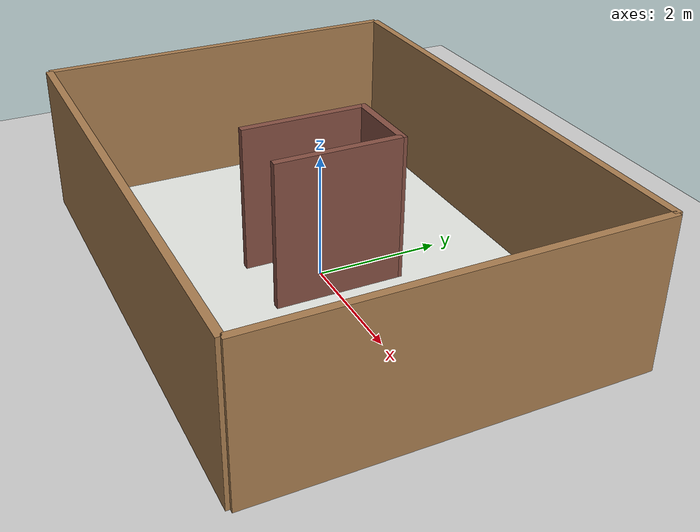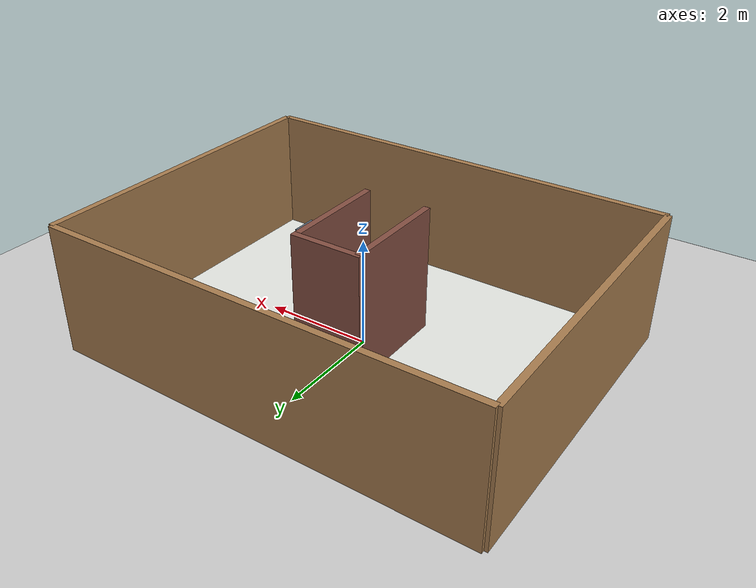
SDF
<?xml version="1.0" ?>
<sdf version="1.6">
  <world name="mapsimple_scan_world">
    <gravity>0 0 -9.8</gravity>
    <magnetic_field>6e-06 2.3e-05 -4.2e-05</magnetic_field>
    <atmosphere type="adiabatic"/>

    <include>
      <uri>model://sun</uri>
    </include>

    <include>
      <uri>model://ground_plane</uri>
    </include>

    <scene>
      <ambient>0.78 0.78 0.76 1</ambient>
      <background>0.93 0.95 0.98 1</background>
      <shadows>true</shadows>
    </scene>

    <physics name="default_physics" default="1" type="ode">
      <max_step_size>0.001</max_step_size>
      <real_time_update_rate>1000</real_time_update_rate>
    </physics>

    <gui fullscreen="0">
      <camera name="user_camera">
        <pose>0 0 14 0 1.57 1.57</pose>
        <view_controller>orbit</view_controller>
        <projection_type>perspective</projection_type>
      </camera>
    </gui>

    <model name="simple_scan_layout">
      <static>true</static>
      <pose>0 0 0 0 0 0</pose>

      <link name="floor">
        <pose>0 0 0.025 0 0 0</pose>
        <collision name="floor_collision">
          <geometry>
            <box>
              <size>8 6 0.05</size>
            </box>
          </geometry>
        </collision>
        <visual name="floor_visual">
          <geometry>
            <box>
              <size>8 6 0.05</size>
            </box>
          </geometry>
          <material>
            <ambient>0.85 0.86 0.84 1</ambient>
            <diffuse>0.90 0.91 0.89 1</diffuse>
          </material>
        </visual>
      </link>

      <link name="wall_south">
        <pose>0 -3 1.2 0 0 0</pose>
        <collision name="collision">
          <geometry>
            <box><size>8 0.12 2.4</size></box>
          </geometry>
        </collision>
        <visual name="visual">
          <geometry>
            <box><size>8 0.12 2.4</size></box>
          </geometry>
          <material>
            <ambient>0.56 0.40 0.24 1</ambient>
            <diffuse>0.66 0.49 0.31 1</diffuse>
          </material>
        </visual>
      </link>

      <link name="wall_north">
        <pose>0 3 1.2 0 0 0</pose>
        <collision name="collision">
          <geometry>
            <box><size>8 0.12 2.4</size></box>
          </geometry>
        </collision>
        <visual name="visual">
          <geometry>
            <box><size>8 0.12 2.4</size></box>
          </geometry>
          <material>
            <ambient>0.56 0.40 0.24 1</ambient>
            <diffuse>0.66 0.49 0.31 1</diffuse>
          </material>
        </visual>
      </link>

      <link name="wall_west">
        <pose>-4 0 1.2 0 0 0</pose>
        <collision name="collision">
          <geometry>
            <box><size>0.12 6 2.4</size></box>
          </geometry>
        </collision>
        <visual name="visual">
          <geometry>
            <box><size>0.12 6 2.4</size></box>
          </geometry>
          <material>
            <ambient>0.56 0.40 0.24 1</ambient>
            <diffuse>0.66 0.49 0.31 1</diffuse>
          </material>
        </visual>
      </link>

      <link name="wall_east">
        <pose>4 0 1.2 0 0 0</pose>
        <collision name="collision">
          <geometry>
            <box><size>0.12 6 2.4</size></box>
          </geometry>
        </collision>
        <visual name="visual">
          <geometry>
            <box><size>0.12 6 2.4</size></box>
          </geometry>
          <material>
            <ambient>0.56 0.40 0.24 1</ambient>
            <diffuse>0.66 0.49 0.31 1</diffuse>
          </material>
        </visual>
      </link>

      <link name="center_divider_left">
        <pose>-0.6 0 1.2 0 0 0</pose>
        <collision name="collision">
          <geometry>
            <box><size>0.12 2.0 2.4</size></box>
          </geometry>
        </collision>
        <visual name="visual">
          <geometry>
            <box><size>0.12 2.0 2.4</size></box>
          </geometry>
          <material>
            <ambient>0.42 0.24 0.20 1</ambient>
            <diffuse>0.52 0.31 0.26 1</diffuse>
          </material>
        </visual>
      </link>

      <link name="center_divider_right">
        <pose>0.6 0 1.2 0 0 0</pose>
        <collision name="collision">
          <geometry>
            <box><size>0.12 2.0 2.4</size></box>
          </geometry>
        </collision>
        <visual name="visual">
          <geometry>
            <box><size>0.12 2.0 2.4</size></box>
          </geometry>
          <material>
            <ambient>0.42 0.24 0.20 1</ambient>
            <diffuse>0.52 0.31 0.26 1</diffuse>
          </material>
        </visual>
      </link>

      <link name="top_cross_bar">
        <pose>0 1.0 1.2 0 0 0</pose>
        <collision name="collision">
          <geometry>
            <box><size>1.32 0.12 2.4</size></box>
          </geometry>
        </collision>
        <visual name="visual">
          <geometry>
            <box><size>1.32 0.12 2.4</size></box>
          </geometry>
          <material>
            <ambient>0.42 0.24 0.20 1</ambient>
            <diffuse>0.52 0.31 0.26 1</diffuse>
          </material>
        </visual>
      </link>

      <link name="pillar_nw">
        <pose>-2.3 1.6 0.45 0 0 0</pose>
        <collision name="collision">
          <geometry>
            <box><size>0.5 0.5 0.9</size></box>
          </geometry>
        </collision>
        <visual name="visual">
          <geometry>
            <box><size>0.5 0.5 0.9</size></box>
          </geometry>
          <material>
            <ambient>0.28 0.33 0.38 1</ambient>
            <diffuse>0.36 0.42 0.48 1</diffuse>
          </material>
        </visual>
      </link>

      <link name="pillar_se">
        <pose>2.3 -1.6 0.45 0 0 0</pose>
        <collision name="collision">
          <geometry>
            <box><size>0.5 0.5 0.9</size></box>
          </geometry>
        </collision>
        <visual name="visual">
          <geometry>
            <box><size>0.5 0.5 0.9</size></box>
          </geometry>
          <material>
            <ambient>0.28 0.33 0.38 1</ambient>
            <diffuse>0.36 0.42 0.48 1</diffuse>
          </material>
        </visual>
      </link>
    </model>
  </world>
</sdf>
